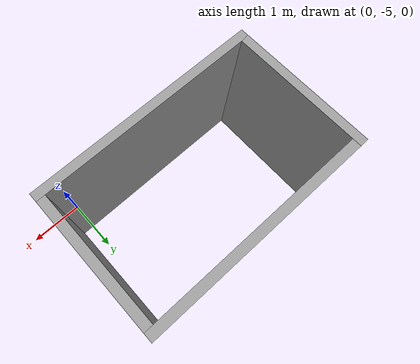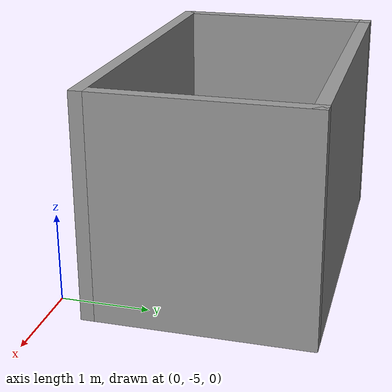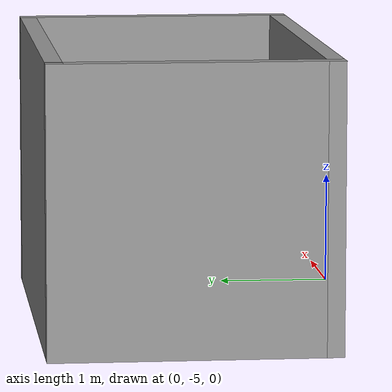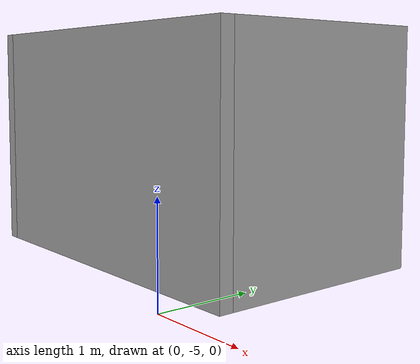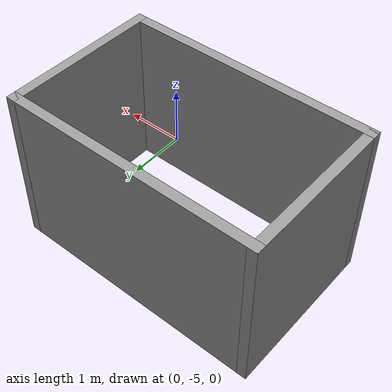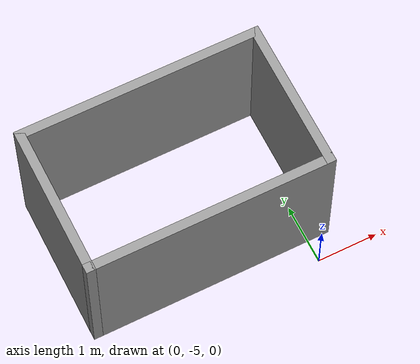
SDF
<?xml version='1.0'?>
<sdf version='1.7'>
  <model name='quad'>
    <pose>-1.6392 -2.31448 0 0 -0 0</pose>
    <link name='Wall_10'>
      <collision name='Wall_10_Collision'>
        <geometry>
          <box>
            <size>2.5 0.15 2.5</size>
          </box>
        </geometry>
        <pose>0 0 1.25 0 -0 0</pose>
      </collision>
      <visual name='Wall_10_Visual'>
        <pose>0 0 1.25 0 -0 0</pose>
        <geometry>
          <box>
            <size>2.5 0.15 2.5</size>
          </box>
        </geometry>
        <material>
          <script>
            <uri>file://media/materials/scripts/gazebo.material</uri>
            <name>Gazebo/Grey</name>
          </script>
          <ambient>1 1 1 1</ambient>
        </material>
        <meta>
          <layer>0</layer>
        </meta>
      </visual>
      <pose>-1.925 -1.06448 0 0 -0 1.5708</pose>
    </link>
    <link name='Wall_7'>
      <collision name='Wall_7_Collision'>
        <geometry>
          <box>
            <size>4 0.15 2.5</size>
          </box>
        </geometry>
        <pose>0 0 1.25 0 -0 0</pose>
      </collision>
      <visual name='Wall_7_Visual'>
        <pose>0 0 1.25 0 -0 0</pose>
        <geometry>
          <box>
            <size>4 0.15 2.5</size>
          </box>
        </geometry>
        <material>
          <script>
            <uri>file://media/materials/scripts/gazebo.material</uri>
            <name>Gazebo/Grey</name>
          </script>
          <ambient>1 1 1 1</ambient>
        </material>
        <meta>
          <layer>0</layer>
        </meta>
      </visual>
      <pose>-0 0.110519 0 0 -0 0</pose>
    </link>
    <link name='Wall_8'>
      <collision name='Wall_8_Collision'>
        <geometry>
          <box>
            <size>2.5 0.15 2.5</size>
          </box>
        </geometry>
        <pose>0 0 1.25 0 -0 0</pose>
      </collision>
      <visual name='Wall_8_Visual'>
        <pose>0 0 1.25 0 -0 0</pose>
        <geometry>
          <box>
            <size>2.5 0.15 2.5</size>
          </box>
        </geometry>
        <material>
          <script>
            <uri>file://media/materials/scripts/gazebo.material</uri>
            <name>Gazebo/Grey</name>
          </script>
          <ambient>1 1 1 1</ambient>
        </material>
        <meta>
          <layer>0</layer>
        </meta>
      </visual>
      <pose>1.925 -1.06448 0 0 -0 -1.5708</pose>
    </link>
    <link name='Wall_9'>
      <collision name='Wall_9_Collision'>
        <geometry>
          <box>
            <size>4 0.15 2.5</size>
          </box>
        </geometry>
        <pose>0 0 1.25 0 -0 0</pose>
      </collision>
      <visual name='Wall_9_Visual'>
        <pose>0 0 1.25 0 -0 0</pose>
        <geometry>
          <box>
            <size>4 0.15 2.5</size>
          </box>
        </geometry>
        <material>
          <script>
            <uri>file://media/materials/scripts/gazebo.material</uri>
            <name>Gazebo/Grey</name>
          </script>
          <ambient>1 1 1 1</ambient>
        </material>
        <meta>
          <layer>0</layer>
        </meta>
      </visual>
      <pose>-0 -2.23948 0 0 -0 3.14159</pose>
    </link>
    <static>1</static>
  </model>
</sdf>
